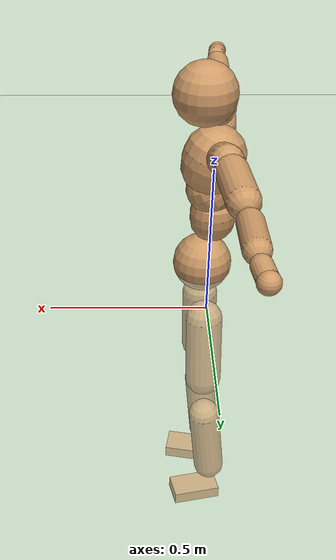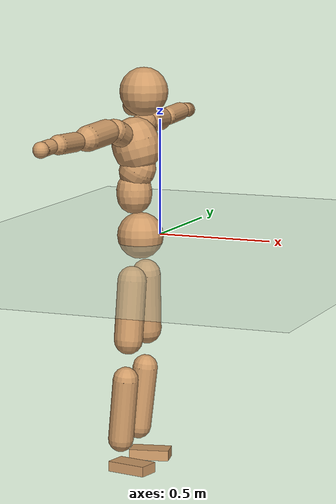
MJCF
<mujoco model="humanoid">
  <compiler coordinate="local" angle="radian"/>
  <default>
    <joint damping="0.0" armature="0.01" stiffness="0.0" limited="true"/>
    <geom conaffinity="1" condim="3" contype="7" margin="0.001" rgba="0.8 0.6 .4 1"/>
  </default>
  <asset>
    <texture type="skybox" builtin="gradient" rgb1=".4 .5 .6" rgb2="0 0 0" width="100" height="100"/>
    <texture builtin="flat" height="1278" mark="cross" markrgb="1 1 1" name="texgeom" random="0.01" rgb1="0.8 0.6 0.4" rgb2="0.8 0.6 0.4" type="cube" width="127"/>
    <texture builtin="checker" height="100" name="texplane" rgb1="0 0 0" rgb2="0.8 0.8 0.8" type="2d" width="100"/>
    <material name="MatPlane" reflectance="0.5" shininess="1" specular="1" texrepeat="60 60" texture="texplane"/>
    <material name="geom" texture="texgeom" texuniform="true"/>
  </asset>
  <worldbody>
    <light cutoff="100" diffuse="1 1 1" dir="-0 0 -1.3" directional="true" exponent="1" pos="0 0 1.3" specular=".1 .1 .1"/>
    <geom conaffinity="1" condim="3" name="floor" pos="0 0 0" rgba="0.8 0.9 0.8 1" size="100 100 .2" type="plane" material="MatPlane"/>
    <body name="Pelvis" pos="-0.0002 -0.2267 0.0301">
      <freejoint name="Pelvis"/>
      <geom type="sphere" contype="1" conaffinity="1" density="500" size="0.0989" pos="0.0000 0.0000 0.0000" name="Pelvis"/>
      <body name="L_Hip" pos="-0.0075 0.075 -0.0973">
        <joint name="L_Hip_x" type="hinge" pos="0 0 0" axis="1 0 0" stiffness="800" damping="80" armature="0.02" range="-180.0000 180.0000"/>
        <joint name="L_Hip_y" type="hinge" pos="0 0 0" axis="0 1 0" stiffness="800" damping="80" armature="0.02" range="-180.0000 180.0000"/>
        <joint name="L_Hip_z" type="hinge" pos="0 0 0" axis="0 0 1" stiffness="800" damping="80" armature="0.02" range="-180.0000 180.0000"/>
        <geom type="capsule" contype="1" conaffinity="1" density="500" fromto="-0.0016 0.0074 -0.0825 -0.0063 0.0296 -0.3301" size="0.0624" name="L_Hip"/>
        <body name="L_Knee" pos="-0.0078 0.037 -0.4127">
          <joint name="L_Knee_x" type="hinge" pos="0 0 0" axis="1 0 0" stiffness="800" damping="80" armature="0.02" range="-180.0000 180.0000"/>
          <joint name="L_Knee_y" type="hinge" pos="0 0 0" axis="0 1 0" stiffness="800" damping="80" armature="0.02" range="-180.0000 180.0000"/>
          <joint name="L_Knee_z" type="hinge" pos="0 0 0" axis="0 0 1" stiffness="800" damping="80" armature="0.02" range="-180.0000 180.0000"/>
          <geom type="capsule" contype="1" conaffinity="1" density="500" fromto="-0.0095 -0.0025 -0.0881 -0.0380 -0.0101 -0.3523" size="0.0547" name="L_Knee"/>
          <body name="L_Ankle" pos="-0.0475 -0.0126 -0.4404">
            <joint name="L_Ankle_x" type="hinge" pos="0 0 0" axis="1 0 0" stiffness="800" damping="80" armature="0.02" range="-180.0000 180.0000"/>
            <joint name="L_Ankle_y" type="hinge" pos="0 0 0" axis="0 1 0" stiffness="800" damping="80" armature="0.02" range="-180.0000 180.0000"/>
            <joint name="L_Ankle_z" type="hinge" pos="0 0 0" axis="0 0 1" stiffness="800" damping="80" armature="0.02" range="-180.0000 180.0000"/>
            <geom type="box" contype="1" conaffinity="1" density="500" pos="0.0615 0.0130 -0.0311" size="0.0856 0.0472 0.0225" quat="0.9946 0.0000 0.0000 0.1038" name="L_Ankle"/>
            <body name="L_Toe" pos="0.1229 0.0259 -0.0623">
              <joint name="L_Toe_x" type="hinge" pos="0 0 0" axis="1 0 0" stiffness="500" damping="50" armature="0.02" range="-180.0000 180.0000"/>
              <joint name="L_Toe_y" type="hinge" pos="0 0 0" axis="0 1 0" stiffness="500" damping="50" armature="0.02" range="-180.0000 180.0000"/>
              <joint name="L_Toe_z" type="hinge" pos="0 0 0" axis="0 0 1" stiffness="500" damping="50" armature="0.02" range="-180.0000 180.0000"/>
              <geom type="box" contype="1" conaffinity="1" density="500" pos="0.0000 0.0000 0.0307" size="0.001 0.0024 0.0011" quat="0.9940 0.0000 0.0000 0.1098" name="L_Toe"/>
            </body>
          </body>
        </body>
      </body>
      <body name="R_Hip" pos="-0.0031 -0.0718 -0.097">
        <joint name="R_Hip_x" type="hinge" pos="0 0 0" axis="1 0 0" stiffness="800" damping="80" armature="0.02" range="-180.0000 180.0000"/>
        <joint name="R_Hip_y" type="hinge" pos="0 0 0" axis="0 1 0" stiffness="800" damping="80" armature="0.02" range="-180.0000 180.0000"/>
        <joint name="R_Hip_z" type="hinge" pos="0 0 0" axis="0 0 1" stiffness="800" damping="80" armature="0.02" range="-180.0000 180.0000"/>
        <geom type="capsule" contype="1" conaffinity="1" density="500" fromto="-0.0020 -0.0089 -0.0841 -0.0082 -0.0357 -0.3365" size="0.0615" name="R_Hip"/>
        <body name="R_Knee" pos="-0.0102 -0.0446 -0.4207">
          <joint name="R_Knee_x" type="hinge" pos="0 0 0" axis="1 0 0" stiffness="800" damping="80" armature="0.02" range="-180.0000 180.0000"/>
          <joint name="R_Knee_y" type="hinge" pos="0 0 0" axis="0 1 0" stiffness="800" damping="80" armature="0.02" range="-180.0000 180.0000"/>
          <joint name="R_Knee_z" type="hinge" pos="0 0 0" axis="0 0 1" stiffness="800" damping="80" armature="0.02" range="-180.0000 180.0000"/>
          <geom type="capsule" contype="1" conaffinity="1" density="500" fromto="-0.0090 0.0032 -0.0883 -0.0360 0.0130 -0.3531" size="0.0549" name="R_Knee"/>
          <body name="R_Ankle" pos="-0.0451 0.0162 -0.4414">
            <joint name="R_Ankle_x" type="hinge" pos="0 0 0" axis="1 0 0" stiffness="800" damping="80" armature="0.02" range="-180.0000 180.0000"/>
            <joint name="R_Ankle_y" type="hinge" pos="0 0 0" axis="0 1 0" stiffness="800" damping="80" armature="0.02" range="-180.0000 180.0000"/>
            <joint name="R_Ankle_z" type="hinge" pos="0 0 0" axis="0 0 1" stiffness="800" damping="80" armature="0.02" range="-180.0000 180.0000"/>
            <geom type="box" contype="1" conaffinity="1" density="500" pos="0.0635 -0.0124 -0.0265" size="0.0882 0.0484 0.0219" quat="0.9953 0.0000 0.0000 -0.0965" name="R_Ankle"/>
            <body name="R_Toe" pos="0.1269 -0.0248 -0.0529">
              <joint name="R_Toe_x" type="hinge" pos="0 0 0" axis="1 0 0" stiffness="500" damping="50" armature="0.02" range="-180.0000 180.0000"/>
              <joint name="R_Toe_y" type="hinge" pos="0 0 0" axis="0 1 0" stiffness="500" damping="50" armature="0.02" range="-180.0000 180.0000"/>
              <joint name="R_Toe_z" type="hinge" pos="0 0 0" axis="0 0 1" stiffness="500" damping="50" armature="0.02" range="-180.0000 180.0000"/>
              <geom type="box" contype="1" conaffinity="1" density="500" pos="0.0000 0.0000 0.0293" size="0.0009 0.0024 0.0012" quat="0.9962 0.0000 0.0000 -0.0875" name="R_Toe"/>
            </body>
          </body>
        </body>
      </body>
      <body name="Torso" pos="-0.026 -0.0032 0.1127">
        <joint name="Torso_x" type="hinge" pos="0 0 0" axis="1 0 0" stiffness="1000" damping="100" armature="0.02" range="-180.0000 180.0000"/>
        <joint name="Torso_y" type="hinge" pos="0 0 0" axis="0 1 0" stiffness="1000" damping="100" armature="0.02" range="-180.0000 180.0000"/>
        <joint name="Torso_z" type="hinge" pos="0 0 0" axis="0 0 1" stiffness="1000" damping="100" armature="0.02" range="-180.0000 180.0000"/>
        <geom type="capsule" contype="1" conaffinity="1" density="500" fromto="-0.0016 0.0027 0.0835 -0.0011 0.0018 0.0556" size="0.0757" name="Torso"/>
        <body name="Spine" pos="-0.0027 0.0045 0.1391">
          <joint name="Spine_x" type="hinge" pos="0 0 0" axis="1 0 0" stiffness="1000" damping="100" armature="0.02" range="-180.0000 180.0000"/>
          <joint name="Spine_y" type="hinge" pos="0 0 0" axis="0 1 0" stiffness="1000" damping="100" armature="0.02" range="-180.0000 180.0000"/>
          <joint name="Spine_z" type="hinge" pos="0 0 0" axis="0 0 1" stiffness="1000" damping="100" armature="0.02" range="-180.0000 180.0000"/>
          <geom type="capsule" contype="1" conaffinity="1" density="500" fromto="0.0182 0.0008 0.0326 0.0121 0.0005 0.0217" size="0.0765" name="Spine"/>
          <body name="Chest" pos="0.0303 0.0013 0.0544">
            <joint name="Chest_x" type="hinge" pos="0 0 0" axis="1 0 0" stiffness="1000" damping="100" armature="0.02" range="-180.0000 180.0000"/>
            <joint name="Chest_y" type="hinge" pos="0 0 0" axis="0 1 0" stiffness="1000" damping="100" armature="0.02" range="-180.0000 180.0000"/>
            <joint name="Chest_z" type="hinge" pos="0 0 0" axis="0 0 1" stiffness="1000" damping="100" armature="0.02" range="-180.0000 180.0000"/>
            <geom type="capsule" contype="1" conaffinity="1" density="500" fromto="-0.0262 -0.0010 0.0960 -0.0175 -0.0007 0.0640" size="0.1016" name="Chest"/>
            <body name="Neck" pos="-0.0465 -0.003 0.2302">
              <joint name="Neck_x" type="hinge" pos="0 0 0" axis="1 0 0" stiffness="500" damping="50" armature="0.02" range="-180.0000 180.0000"/>
              <joint name="Neck_y" type="hinge" pos="0 0 0" axis="0 1 0" stiffness="500" damping="50" armature="0.02" range="-180.0000 180.0000"/>
              <joint name="Neck_z" type="hinge" pos="0 0 0" axis="0 0 1" stiffness="500" damping="50" armature="0.02" range="-180.0000 180.0000"/>
              <geom type="capsule" contype="1" conaffinity="1" density="500" fromto="0.0120 0.0009 0.0151 0.0480 0.0036 0.0603" size="0.0435" name="Neck"/>
              <body name="Head" pos="0.0601 0.0045 0.0754">
                <joint name="Head_x" type="hinge" pos="0 0 0" axis="1 0 0" stiffness="500" damping="50" armature="0.02" range="-180.0000 180.0000"/>
                <joint name="Head_y" type="hinge" pos="0 0 0" axis="0 1 0" stiffness="500" damping="50" armature="0.02" range="-180.0000 180.0000"/>
                <joint name="Head_z" type="hinge" pos="0 0 0" axis="0 0 1" stiffness="500" damping="50" armature="0.02" range="-180.0000 180.0000"/>
                <geom type="sphere" contype="1" conaffinity="1" density="500" size="0.1029" pos="0.0000 0.0000 0.0000" name="Head"/>
              </body>
            </body>
            <body name="L_Thorax" pos="-0.0395 0.0804 0.1262">
              <joint name="L_Thorax_x" type="hinge" pos="0 0 0" axis="1 0 0" stiffness="500" damping="50" armature="0.02" range="-180.0000 180.0000"/>
              <joint name="L_Thorax_y" type="hinge" pos="0 0 0" axis="0 1 0" stiffness="500" damping="50" armature="0.02" range="-180.0000 180.0000"/>
              <joint name="L_Thorax_z" type="hinge" pos="0 0 0" axis="0 0 1" stiffness="500" damping="50" armature="0.02" range="-180.0000 180.0000"/>
              <geom type="capsule" contype="1" conaffinity="1" density="500" fromto="-0.0017 0.0174 0.0068 -0.0067 0.0694 0.0271" size="0.0527" name="L_Thorax"/>
              <body name="L_Shoulder" pos="-0.0084 0.0868 0.0339">
                <joint name="L_Shoulder_x" type="hinge" pos="0 0 0" axis="1 0 0" stiffness="500" damping="50" armature="0.02" range="-720.0000 720.0000"/>
                <joint name="L_Shoulder_y" type="hinge" pos="0 0 0" axis="0 1 0" stiffness="500" damping="50" armature="0.02" range="-720.0000 720.0000"/>
                <joint name="L_Shoulder_z" type="hinge" pos="0 0 0" axis="0 0 1" stiffness="500" damping="50" armature="0.02" range="-720.0000 720.0000"/>
                <geom type="capsule" contype="1" conaffinity="1" density="500" fromto="-0.0060 0.0547 -0.0031 -0.0239 0.2186 -0.0124" size="0.0516" name="L_Shoulder"/>
                <body name="L_Elbow" pos="-0.0299 0.2733 -0.0154">
                  <joint name="L_Elbow_x" type="hinge" pos="0 0 0" axis="1 0 0" stiffness="500" damping="50" armature="0.02" range="-720.0000 720.0000"/>
                  <joint name="L_Elbow_y" type="hinge" pos="0 0 0" axis="0 1 0" stiffness="500" damping="50" armature="0.02" range="-720.0000 720.0000"/>
                  <joint name="L_Elbow_z" type="hinge" pos="0 0 0" axis="0 0 1" stiffness="500" damping="50" armature="0.02" range="-720.0000 720.0000"/>
                  <geom type="capsule" contype="1" conaffinity="1" density="500" fromto="-0.0001 0.0507 0.0022 -0.0004 0.2030 0.0089" size="0.0398" name="L_Elbow"/>
                  <body name="L_Wrist" pos="-0.0005 0.2537 0.0111">
                    <joint name="L_Wrist_x" type="hinge" pos="0 0 0" axis="1 0 0" stiffness="300" damping="30" armature="0.02" range="-180.0000 180.0000"/>
                    <joint name="L_Wrist_y" type="hinge" pos="0 0 0" axis="0 1 0" stiffness="300" damping="30" armature="0.02" range="-180.0000 180.0000"/>
                    <joint name="L_Wrist_z" type="hinge" pos="0 0 0" axis="0 0 1" stiffness="300" damping="30" armature="0.02" range="-180.0000 180.0000"/>
                    <geom type="capsule" contype="1" conaffinity="1" density="500" fromto="-0.0027 0.0162 -0.0020 -0.0108 0.0648 -0.0079" size="0.0306" name="L_Wrist"/>
                    <body name="L_Hand" pos="-0.0135 0.081 -0.0099">
                      <joint name="L_Hand_x" type="hinge" pos="0 0 0" axis="1 0 0" stiffness="300" damping="30" armature="0.02" range="-180.0000 180.0000"/>
                      <joint name="L_Hand_y" type="hinge" pos="0 0 0" axis="0 1 0" stiffness="300" damping="30" armature="0.02" range="-180.0000 180.0000"/>
                      <joint name="L_Hand_z" type="hinge" pos="0 0 0" axis="0 0 1" stiffness="300" damping="30" armature="0.02" range="-180.0000 180.0000"/>
                      <geom type="sphere" contype="1" conaffinity="1" density="500" size="0.0327" pos="0.0000 0.0000 0.0000" name="L_Hand"/>
                    </body>
                  </body>
                </body>
              </body>
            </body>
            <body name="R_Thorax" pos="-0.0452 -0.0824 0.1238">
              <joint name="R_Thorax_x" type="hinge" pos="0 0 0" axis="1 0 0" stiffness="500" damping="50" armature="0.02" range="-180.0000 180.0000"/>
              <joint name="R_Thorax_y" type="hinge" pos="0 0 0" axis="0 1 0" stiffness="500" damping="50" armature="0.02" range="-180.0000 180.0000"/>
              <joint name="R_Thorax_z" type="hinge" pos="0 0 0" axis="0 0 1" stiffness="500" damping="50" armature="0.02" range="-180.0000 180.0000"/>
              <geom type="capsule" contype="1" conaffinity="1" density="500" fromto="-0.0020 -0.0180 0.0072 -0.0079 -0.0719 0.0287" size="0.0516" name="R_Thorax"/>
              <body name="R_Shoulder" pos="-0.0099 -0.0899 0.0359">
                <joint name="R_Shoulder_x" type="hinge" pos="0 0 0" axis="1 0 0" stiffness="500" damping="50" armature="0.02" range="-720.0000 720.0000"/>
                <joint name="R_Shoulder_y" type="hinge" pos="0 0 0" axis="0 1 0" stiffness="500" damping="50" armature="0.02" range="-720.0000 720.0000"/>
                <joint name="R_Shoulder_z" type="hinge" pos="0 0 0" axis="0 0 1" stiffness="500" damping="50" armature="0.02" range="-720.0000 720.0000"/>
                <geom type="capsule" contype="1" conaffinity="1" density="500" fromto="-0.0048 -0.0531 -0.0034 -0.0193 -0.2126 -0.0138" size="0.0534" name="R_Shoulder"/>
                <body name="R_Elbow" pos="-0.0241 -0.2657 -0.0172">
                  <joint name="R_Elbow_x" type="hinge" pos="0 0 0" axis="1 0 0" stiffness="500" damping="50" armature="0.02" range="-720.0000 720.0000"/>
                  <joint name="R_Elbow_y" type="hinge" pos="0 0 0" axis="0 1 0" stiffness="500" damping="50" armature="0.02" range="-720.0000 720.0000"/>
                  <joint name="R_Elbow_z" type="hinge" pos="0 0 0" axis="0 0 1" stiffness="500" damping="50" armature="0.02" range="-720.0000 720.0000"/>
                  <geom type="capsule" contype="1" conaffinity="1" density="500" fromto="-0.0009 -0.0526 0.0022 -0.0037 -0.2105 0.0086" size="0.0404" name="R_Elbow"/>
                  <body name="R_Wrist" pos="-0.0046 -0.2631 0.0108">
                    <joint name="R_Wrist_x" type="hinge" pos="0 0 0" axis="1 0 0" stiffness="300" damping="30" armature="0.02" range="-180.0000 180.0000"/>
                    <joint name="R_Wrist_y" type="hinge" pos="0 0 0" axis="0 1 0" stiffness="300" damping="30" armature="0.02" range="-180.0000 180.0000"/>
                    <joint name="R_Wrist_z" type="hinge" pos="0 0 0" axis="0 0 1" stiffness="300" damping="30" armature="0.02" range="-180.0000 180.0000"/>
                    <geom type="capsule" contype="1" conaffinity="1" density="500" fromto="-0.0021 -0.0164 -0.0015 -0.0084 -0.0654 -0.0059" size="0.0314" name="R_Wrist"/>
                    <body name="R_Hand" pos="-0.0105 -0.0818 -0.0073">
                      <joint name="R_Hand_x" type="hinge" pos="0 0 0" axis="1 0 0" stiffness="300" damping="30" armature="0.02" range="-180.0000 180.0000"/>
                      <joint name="R_Hand_y" type="hinge" pos="0 0 0" axis="0 1 0" stiffness="300" damping="30" armature="0.02" range="-180.0000 180.0000"/>
                      <joint name="R_Hand_z" type="hinge" pos="0 0 0" axis="0 0 1" stiffness="300" damping="30" armature="0.02" range="-180.0000 180.0000"/>
                      <geom type="sphere" contype="1" conaffinity="1" density="500" size="0.0329" pos="0.0000 0.0000 0.0000" name="R_Hand"/>
                    </body>
                  </body>
                </body>
              </body>
            </body>
          </body>
        </body>
      </body>
    </body>
  </worldbody>
  <actuator>
    <motor name="L_Hip_x" joint="L_Hip_x" gear="500"/>
    <motor name="L_Hip_y" joint="L_Hip_y" gear="500"/>
    <motor name="L_Hip_z" joint="L_Hip_z" gear="500"/>
    <motor name="L_Knee_x" joint="L_Knee_x" gear="500"/>
    <motor name="L_Knee_y" joint="L_Knee_y" gear="500"/>
    <motor name="L_Knee_z" joint="L_Knee_z" gear="500"/>
    <motor name="L_Ankle_x" joint="L_Ankle_x" gear="500"/>
    <motor name="L_Ankle_y" joint="L_Ankle_y" gear="500"/>
    <motor name="L_Ankle_z" joint="L_Ankle_z" gear="500"/>
    <motor name="L_Toe_x" joint="L_Toe_x" gear="500"/>
    <motor name="L_Toe_y" joint="L_Toe_y" gear="500"/>
    <motor name="L_Toe_z" joint="L_Toe_z" gear="500"/>
    <motor name="R_Hip_x" joint="R_Hip_x" gear="500"/>
    <motor name="R_Hip_y" joint="R_Hip_y" gear="500"/>
    <motor name="R_Hip_z" joint="R_Hip_z" gear="500"/>
    <motor name="R_Knee_x" joint="R_Knee_x" gear="500"/>
    <motor name="R_Knee_y" joint="R_Knee_y" gear="500"/>
    <motor name="R_Knee_z" joint="R_Knee_z" gear="500"/>
    <motor name="R_Ankle_x" joint="R_Ankle_x" gear="500"/>
    <motor name="R_Ankle_y" joint="R_Ankle_y" gear="500"/>
    <motor name="R_Ankle_z" joint="R_Ankle_z" gear="500"/>
    <motor name="R_Toe_x" joint="R_Toe_x" gear="500"/>
    <motor name="R_Toe_y" joint="R_Toe_y" gear="500"/>
    <motor name="R_Toe_z" joint="R_Toe_z" gear="500"/>
    <motor name="Torso_x" joint="Torso_x" gear="500"/>
    <motor name="Torso_y" joint="Torso_y" gear="500"/>
    <motor name="Torso_z" joint="Torso_z" gear="500"/>
    <motor name="Spine_x" joint="Spine_x" gear="500"/>
    <motor name="Spine_y" joint="Spine_y" gear="500"/>
    <motor name="Spine_z" joint="Spine_z" gear="500"/>
    <motor name="Chest_x" joint="Chest_x" gear="500"/>
    <motor name="Chest_y" joint="Chest_y" gear="500"/>
    <motor name="Chest_z" joint="Chest_z" gear="500"/>
    <motor name="Neck_x" joint="Neck_x" gear="500"/>
    <motor name="Neck_y" joint="Neck_y" gear="500"/>
    <motor name="Neck_z" joint="Neck_z" gear="500"/>
    <motor name="Head_x" joint="Head_x" gear="500"/>
    <motor name="Head_y" joint="Head_y" gear="500"/>
    <motor name="Head_z" joint="Head_z" gear="500"/>
    <motor name="L_Thorax_x" joint="L_Thorax_x" gear="500"/>
    <motor name="L_Thorax_y" joint="L_Thorax_y" gear="500"/>
    <motor name="L_Thorax_z" joint="L_Thorax_z" gear="500"/>
    <motor name="L_Shoulder_x" joint="L_Shoulder_x" gear="500"/>
    <motor name="L_Shoulder_y" joint="L_Shoulder_y" gear="500"/>
    <motor name="L_Shoulder_z" joint="L_Shoulder_z" gear="500"/>
    <motor name="L_Elbow_x" joint="L_Elbow_x" gear="500"/>
    <motor name="L_Elbow_y" joint="L_Elbow_y" gear="500"/>
    <motor name="L_Elbow_z" joint="L_Elbow_z" gear="500"/>
    <motor name="L_Wrist_x" joint="L_Wrist_x" gear="500"/>
    <motor name="L_Wrist_y" joint="L_Wrist_y" gear="500"/>
    <motor name="L_Wrist_z" joint="L_Wrist_z" gear="500"/>
    <motor name="L_Hand_x" joint="L_Hand_x" gear="500"/>
    <motor name="L_Hand_y" joint="L_Hand_y" gear="500"/>
    <motor name="L_Hand_z" joint="L_Hand_z" gear="500"/>
    <motor name="R_Thorax_x" joint="R_Thorax_x" gear="500"/>
    <motor name="R_Thorax_y" joint="R_Thorax_y" gear="500"/>
    <motor name="R_Thorax_z" joint="R_Thorax_z" gear="500"/>
    <motor name="R_Shoulder_x" joint="R_Shoulder_x" gear="500"/>
    <motor name="R_Shoulder_y" joint="R_Shoulder_y" gear="500"/>
    <motor name="R_Shoulder_z" joint="R_Shoulder_z" gear="500"/>
    <motor name="R_Elbow_x" joint="R_Elbow_x" gear="500"/>
    <motor name="R_Elbow_y" joint="R_Elbow_y" gear="500"/>
    <motor name="R_Elbow_z" joint="R_Elbow_z" gear="500"/>
    <motor name="R_Wrist_x" joint="R_Wrist_x" gear="500"/>
    <motor name="R_Wrist_y" joint="R_Wrist_y" gear="500"/>
    <motor name="R_Wrist_z" joint="R_Wrist_z" gear="500"/>
    <motor name="R_Hand_x" joint="R_Hand_x" gear="500"/>
    <motor name="R_Hand_y" joint="R_Hand_y" gear="500"/>
    <motor name="R_Hand_z" joint="R_Hand_z" gear="500"/>
  </actuator>
  <contact>
    <exclude body1="Torso" body2="Chest"/>
    <exclude body1="Head" body2="Chest"/>
    <exclude body1="R_Knee" body2="R_Toe"/>
    <exclude body1="R_Knee" body2="L_Ankle"/>
    <exclude body1="R_Knee" body2="L_Toe"/>
    <exclude body1="L_Knee" body2="L_Toe"/>
    <exclude body1="L_Knee" body2="R_Ankle"/>
    <exclude body1="L_Knee" body2="R_Toe"/>
    <exclude body1="L_Shoulder" body2="Chest"/>
    <exclude body1="R_Shoulder" body2="Chest"/>
  </contact>
  <sensor/>
  <size njmax="700" nconmax="700"/>
</mujoco>
